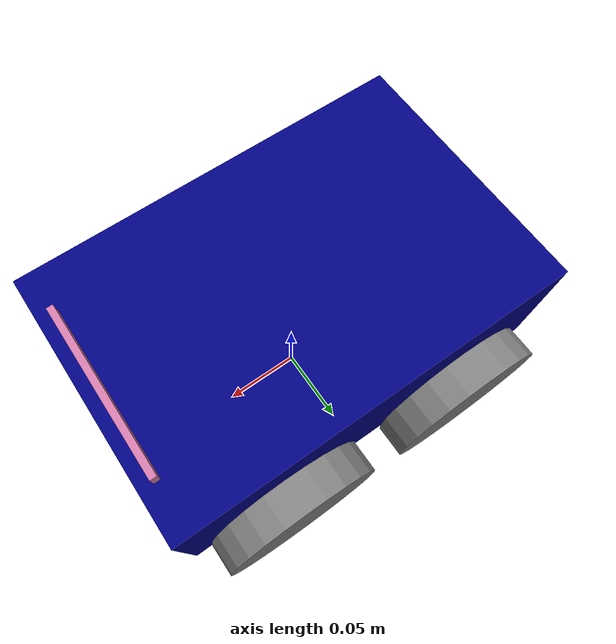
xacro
<?xml version="1.0"?>
<robot xmlns:xacro="http://www.ros.org/wiki/xacro" name="robot_name">

    <xacro:property name="length" value="0.24"/>
    <xacro:property name="width" value="0.16"/>
    <xacro:property name="height" value="0.08"/>
    <xacro:property name="whl_radius" value="0.05"/>
    <xacro:property name="whl_depth" value="0.02"/>
    <xacro:property name="whl_offset_y" value="${width/2.0 + whl_depth/2.0}"/>
    <xacro:property name="whl_offset_x" value="${length/4.0}"/>
    <xacro:property name="whl_offset_z" value="${height/2.0}"/>
    <xacro:property name="mass" value="1.0"/>
    <xacro:property name="cam_offset_x" value="${(length/2.0)-0.01}"/>
    <xacro:property name="cam_offset_z" value="${(height/2.0)+ ($(arg cam_height)/2.0)}"/>

    <!--ros2 control hardware interface and gazebo controller & sensor plugins-->
    <xacro:include filename="$(find robot_sim)/urdf/robot_control.gz.xacro"/>
    <!--common properties file includes color definition-->
    <xacro:include filename="$(find robot_sim)/urdf/common_properties.xacro"/>
    <!--include sensor file-->
    <xacro:include filename="$(find robot_sim)/urdf/sensors.urdf.xacro"/>

    <link name="base_footprint"/>

    <link name="base_link">
        <visual>
            <geometry>
                <box size="${length} ${width} ${height}"/>
            </geometry>
            <origin xyz="0.0 0.0 0.0" rpy="0.0 0.0 0.0"/>
            <material name="blue"/>
        </visual>

        <collision>
            <geometry>
                <box size="${length} ${width} ${height}"/>
            </geometry>
            <origin xyz="0.0 0.0 0.0" rpy="0.0 0.0 0.0"/>
        </collision>

        <inertial>
            <origin xyz="0.0 0.0 0.0" rpy="0.0 0.0 0.0"/>
            <mass value="${mass}"/>
            <inertia ixx="${(1/12.0)*mass*(width*width + height*height)}" ixy="0.0" ixz="0.0"
                     iyy="${(1/12.0)*mass*(length*length + height*height)}" iyz="0.0"
                     izz="${(1/12.0)*mass*(width*width + length*length)}"/>
        </inertial>
    </link>

    <joint name="base_joint" type="fixed">
        <parent link="base_footprint"/>
        <child link="base_link"/>
        <origin xyz="0.0 0.0 ${whl_offset_z + whl_radius}" rpy="0.0 0.0 0.0"/>
    </joint>

    <xacro:macro name="wheel_link" params="prefix whl_offset_y whl_offset_x">
        <link name="${prefix}_link">
            <visual>
                <geometry>
                    <cylinder radius="${whl_radius}" length="${whl_depth}"/>
                </geometry>
                <origin xyz="0.0 0.0 0.0" rpy="0.0 0.0 0.0"/>
                <material name="black"/>
            </visual>

            <collision>
                <geometry>
                    <sphere radius="${whl_radius}"/>
                </geometry>
                <origin xyz="0.0 0.0 0.0" rpy="0.0 0.0 0.0"/>
            </collision>

            <inertial>
                <origin xyz="0.0 0.0 0.0" rpy="0.0 0.0 0.0"/>
                <mass value="${mass}"/>
                <inertia ixx="${(1/12.0)*mass*(3*whl_radius*whl_radius + height*height)}" ixy="0.0" ixz="0.0"
                         iyy="${(1/12.0)*mass*(3*whl_radius*whl_radius + height*height)}" iyz="0.0"
                         izz="${(1/2.0)*mass*(whl_radius * whl_radius)}"/>
            </inertial>

        </link>

        <joint name="${prefix}_joint" type="continuous">
            <parent link="base_link"/>
            <child link="${prefix}_link"/>
            <axis xyz="0 0 1"/>
            <origin xyz="${-whl_offset_x} ${whl_offset_y} ${-whl_offset_z}" rpy="${-pi/2.0} 0 0"/>
        </joint>

    </xacro:macro>

    <xacro:wheel_link prefix="left_rear" whl_offset_y="${whl_offset_y}" whl_offset_x="${whl_offset_x}"/>
    <xacro:wheel_link prefix="right_rear" whl_offset_y="${-whl_offset_y}" whl_offset_x="${whl_offset_x}"/>
    <xacro:wheel_link prefix="left_front" whl_offset_y="${whl_offset_y}" whl_offset_x="${-whl_offset_x}"/>
    <xacro:wheel_link prefix="right_front" whl_offset_y="${-whl_offset_y}" whl_offset_x="${-whl_offset_x}"/>

    <!--Attach the camera to the baselink-->
    <xacro:rgbd_camera parent_link="base_link">
        <origin xyz="${cam_offset_x} 0.0 ${cam_offset_z}" rpy="0.0 0.0 0.0"/>
    </xacro:rgbd_camera>

</robot>

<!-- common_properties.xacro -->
<robot xmlns:xacro="http://www.ros.org/wiki/xacro">
    <material name="blue">
        <color rgba="0.0 0.0 0.5 1.0"/>
    </material>

    <material name="black">
        <color rgba="0.5 0.5 0.5 1.0"/>
    </material>

</robot>

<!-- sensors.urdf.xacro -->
<robot xmlns:xacro="http://www.ros.org/wiki/xacro">

    <!--CAMERA-->
    <xacro:property name="cam_width" value="0.0038"/>
    <xacro:arg name="cam_height" default="0.00955"/>  <!--defined as arg because i want to use variable outside this file-->
    <xacro:property name="cam_height" value="$(arg cam_height)"/>
    <xacro:property name="cam_length" value="0.10156"/>
    <xacro:property name="cam_mass" value="1.0"/>

    <xacro:macro name="rgb_camera" params="parent_link *cam_pose">
        <link name="rgb_camera_link">
            <visual>
                <geometry>
                    <box size="${cam_width} ${cam_length} ${cam_height}"/>
                </geometry>
                <origin xyz="0.0 0.0 0.0" rpy="0.0 0.0 0.0"/>
            </visual>

            <collision>
                <geometry>
                    <box size="${cam_width} ${cam_length} ${cam_height}"/>
                </geometry>
                <origin xyz="0.0 0.0 0.0" rpy="0.0 0.0 0.0"/>
            </collision>

            <inertial>
                <origin xyz="0.0 0.0 0.0" rpy="0.0 0.0 0.0"/>
                <mass value="0.0"/>
                <inertia ixx="${(1/12.0)*cam_mass*(cam_width*cam_width + cam_height*cam_height)}" ixy="0.0" ixz="0.0"
                        iyy="${(1/12.0)*cam_mass*(cam_length*cam_length + cam_height*cam_height)}" iyz="0.0"
                        izz="${(1/12.0)*cam_mass*(cam_width*cam_width + cam_length*cam_length)}"/>
            </inertial>

        </link>

        <joint name="joint_name" type="fixed">
            <parent link="${parent_link}"/>
            <child link="rgb_camera_link"/>
            <xacro:insert_block name="cam_pose"/>  <!-- to pass in the origin tag parameter-->

        </joint>

        <!--TO SIMULATE RGB CAMERA IN GAZEBO-->

        <gazebo reference="camera_link">
        <sensor name="camera" type="camera">
            <always_on>true</always_on>
            <visualize>true</visualize>
            <update_rate>30</update_rate>
            <topic>camera/image_raw</topic>
            <gz_frame_id>camera_link</gz_frame_id>
            <camera name="intel_realsense_r200">
            <camera_info_topic>camera/camera_info</camera_info_topic>
            <horizontal_fov>1.02974</horizontal_fov>
            <image>
                <width>1920</width>
                <height>1080</height>
                <format>R8G8B8</format>
            </image>
            <clip>
                <near>0.02</near>
                <far>300</far>
            </clip>
            <noise>
                <type>gaussian</type>
                <mean>0.0</mean>
                <stddev>0.007</stddev>
            </noise>
            </camera>
        </sensor>
        </gazebo>

    </xacro:macro>

    <xacro:macro name="rgbd_camera" params="parent_link *cam_pose">
        <link name="rgbd_camera_link">
            <visual>
                <geometry>
                    <box size="${cam_width} ${cam_length} ${cam_height}"/>
                </geometry>
                <origin xyz="0.0 0.0 0.0" rpy="0.0 0.0 0.0"/>
            </visual>

            <collision>
                <geometry>
                    <box size="${cam_width} ${cam_length} ${cam_height}"/>
                </geometry>
                <origin xyz="0.0 0.0 0.0" rpy="0.0 0.0 0.0"/>
            </collision>

            <inertial>
                <origin xyz="0.0 0.0 0.0" rpy="0.0 0.0 0.0"/>
                <mass value="0.0"/>
                <inertia ixx="${(1/12.0)*cam_mass*(cam_width*cam_width + cam_height*cam_height)}" ixy="0.0" ixz="0.0"
                        iyy="${(1/12.0)*cam_mass*(cam_length*cam_length + cam_height*cam_height)}" iyz="0.0"
                        izz="${(1/12.0)*cam_mass*(cam_width*cam_width + cam_length*cam_length)}"/>
            </inertial>

        </link>

        <joint name="joint_name" type="fixed">
            <parent link="${parent_link}"/>
            <child link="rgbd_camera_link"/>
            <xacro:insert_block name="cam_pose"/>  <!-- to pass in the origin tag parameter-->
        </joint>

        <!--Creates camera optical frame to transform from robot frame to optical frame-->
        <link name="cam_optical_frame"/>

        <joint name="cam_optical_joint" type="fixed">
            <parent link="rgbd_camera_link"/>
            <child link="cam_optical_frame"/>
            <origin xyz="0.0 0.0 0.0" rpy="0.0 0.0 0.0"/>
        </joint>

        <!--TO SIMULATE RGBD CAMERA IN GAZEBO-->
        <gazebo reference="rgbd_camera_link">
        <sensor name="rgbd_camera" type="rgbd_camera">
            <always_on>true</always_on>
            <visualize>true</visualize>
            <update_rate>30</update_rate>
            <topic>camera</topic>
            <gz_frame_id>cam_optical_frame</gz_frame_id>
            <camera name="intel_realsense_r200">
            <horizontal_fov>1.02974</horizontal_fov>
            <image>
                <width>640</width>
                <height>480</height>
                <format>R8G8B8</format>
            </image>
            <clip>
                <near>0.02</near>
                <far>10.0</far>
            </clip>
            <noise>
                <type>gaussian</type>
                <mean>0.0</mean>
                <stddev>0.007</stddev>
            </noise>
            </camera>
        </sensor>
        </gazebo>

    </xacro:macro>

</robot>
